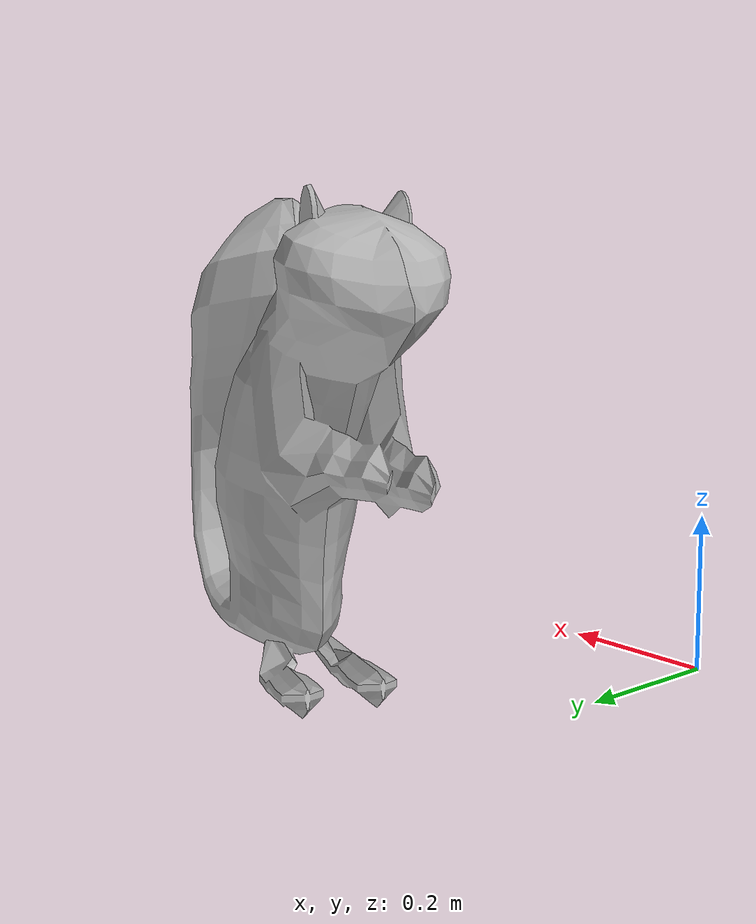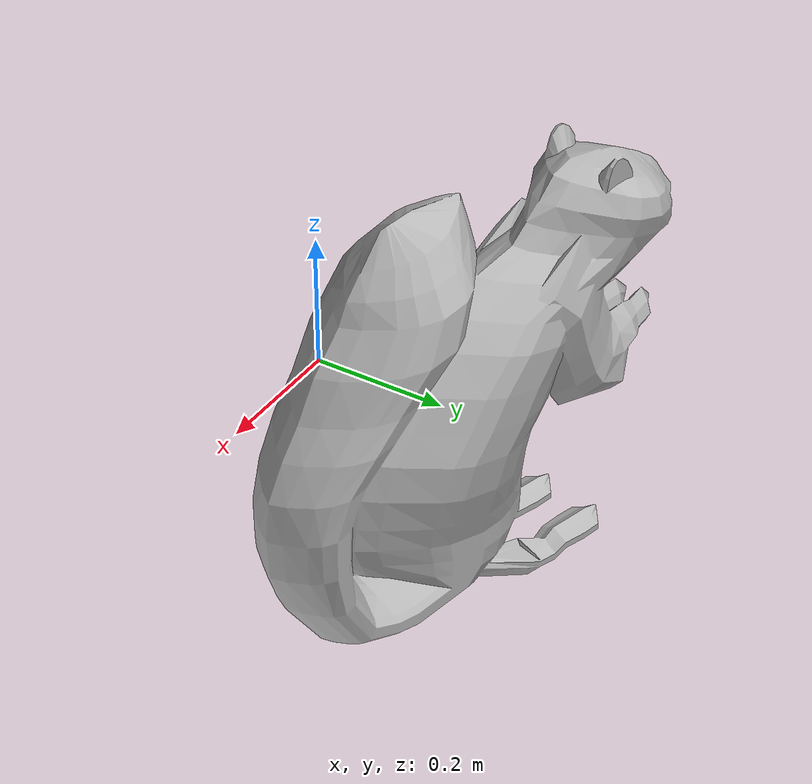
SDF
<?xml version="1.0" ?>
<sdf version="1.5">
  <model name="squirrel">
    <pose>0 0 0  0 0 0</pose>
      <static>true</static>
      <link name="body">
        <visual name="visual">
          <geometry>
            <mesh><uri>model://squirrel/models/Squirrel.dae</uri></mesh>
          </geometry>
        </visual>
      </link>
  </model>
</sdf>
